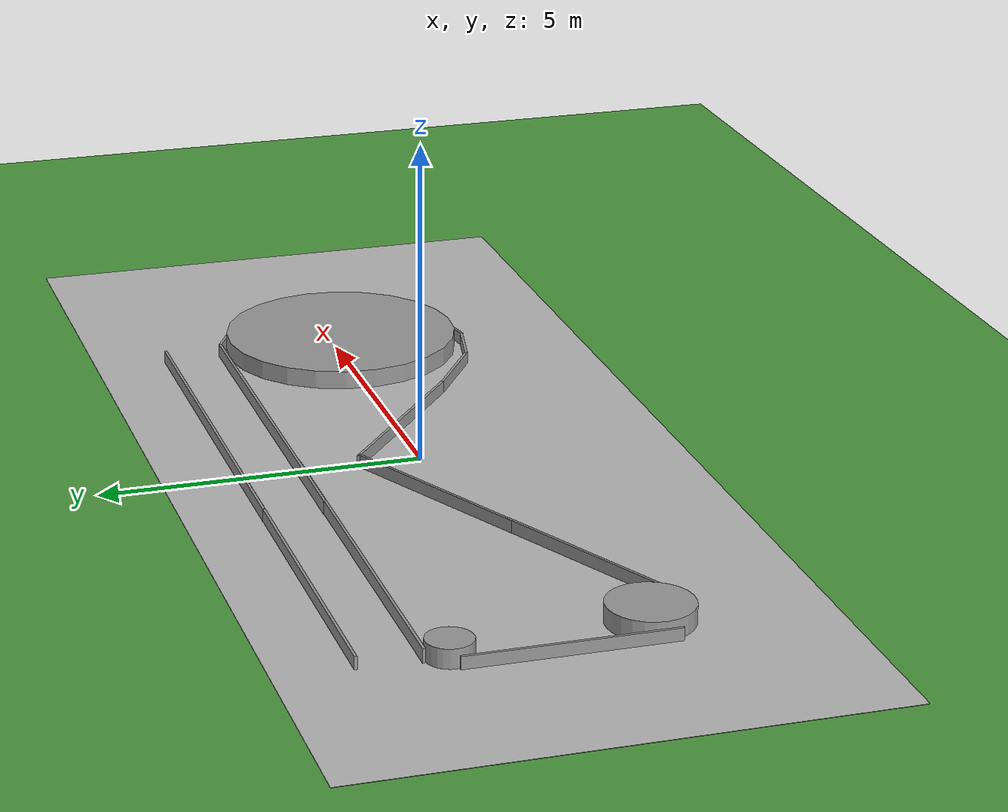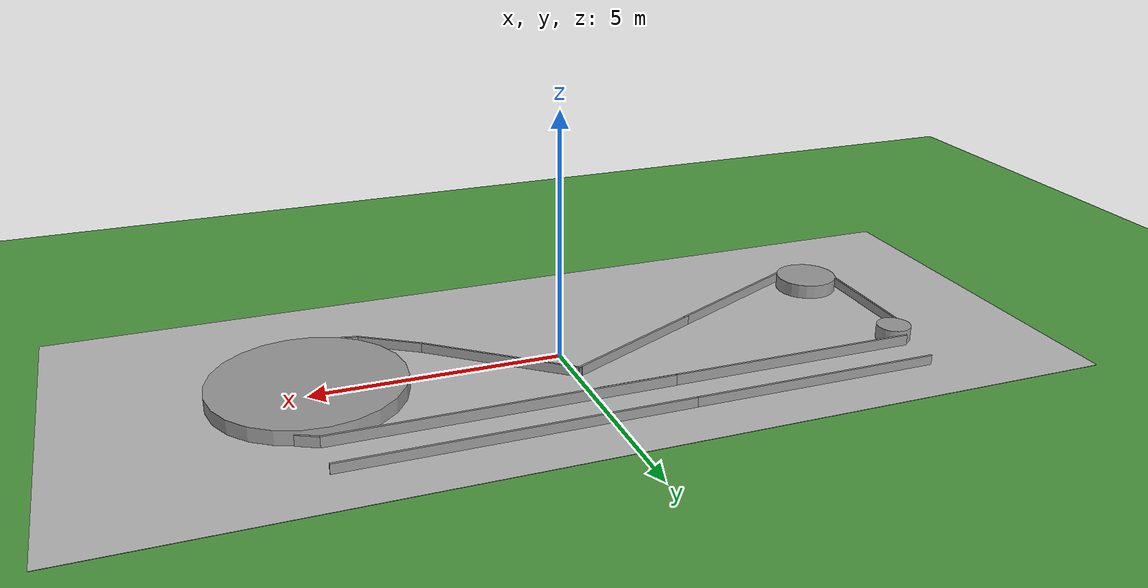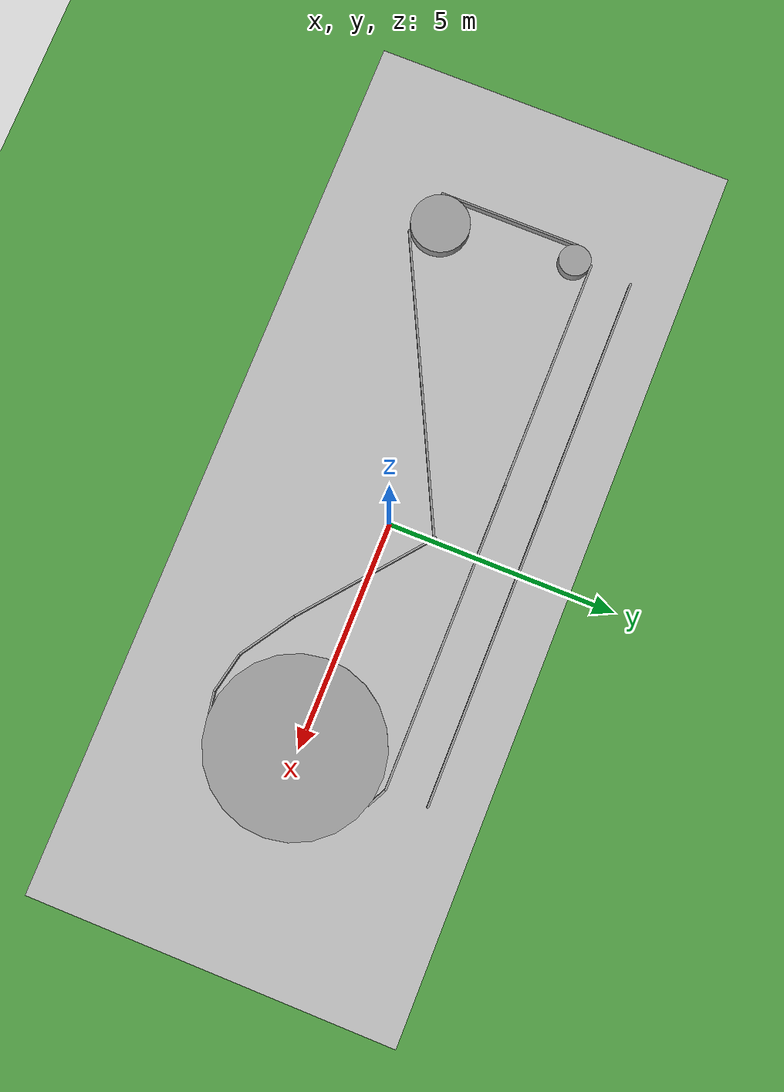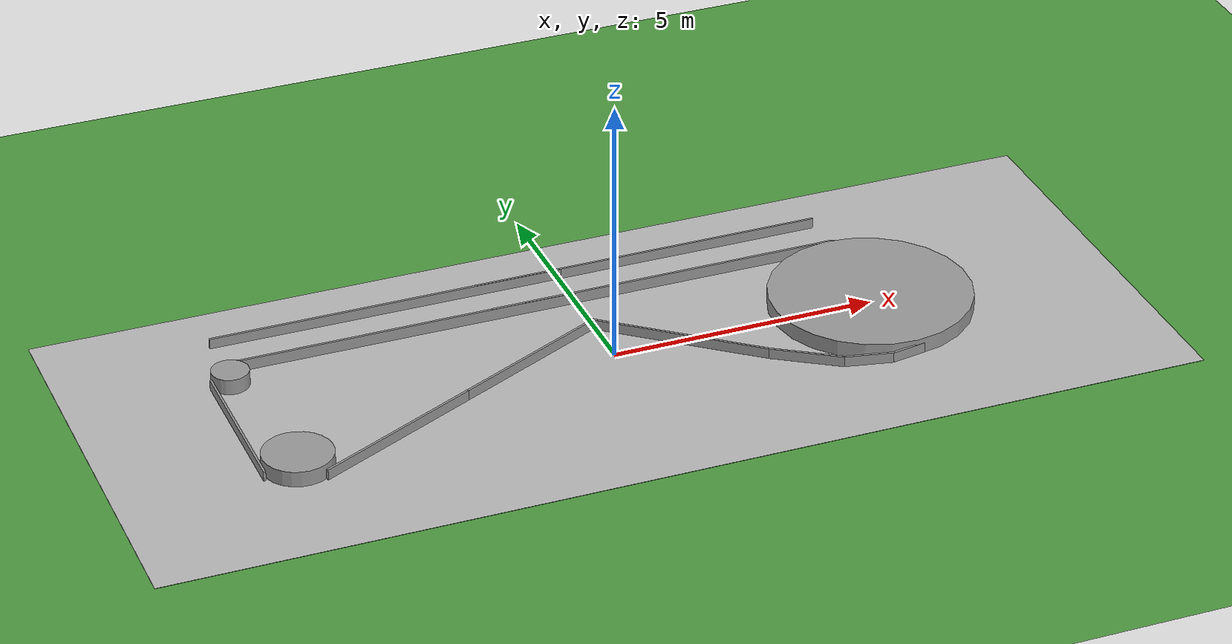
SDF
<sdf version="1.5">
 <world name="default">
  <light name="sun" type="directional">
   <cast_shadows>0</cast_shadows>
   <pose>0 0 10 0 -0 0</pose>
   <diffuse>0.8 0.8 0.8 1</diffuse>
   <specular>0.2 0.2 0.2 1</specular>
   <attenuation>
    <range>1000</range>
    <constant>0.9</constant>
    <linear>0.01</linear>
    <quadratic>0.001</quadratic>
   </attenuation>
   <direction>-0.5 0.1 -0.9</direction>
  </light>
  <scene>
   <sky><clouds><speed>1</speed></clouds></sky>
   <ambient>0.4 0.4 0.4 1</ambient>
   <background>0.7 0.7 0.7 1</background>
   <shadows>1</shadows>
  </scene>
  <physics name="default_physics" default="0" type="ode">
   <real_time_update_rate>1000</real_time_update_rate>
   <ode>
    <solver>
     <type>quick</type>
     <iters>70</iters>
     <sor>1.3</sor>
     <use_dynamic_moi_rescaling>0</use_dynamic_moi_rescaling>
    </solver>
    <constraints>
     <cfm>0</cfm>
     <erp>0.2</erp>
     <contact_max_correcting_vel>100</contact_max_correcting_vel>
     <contact_surface_layer>0.001</contact_surface_layer>
    </constraints>
   </ode>
   <max_step_size>0.001</max_step_size>
   <real_time_factor>1</real_time_factor>
  </physics>
  <scene><ambient>0.4 0.4 0.4 1</ambient><background>0.7 0.7 0.7 1</background><shadows>1</shadows></scene>
  <spherical_coordinates>
   <surface_model>EARTH_WGS84</surface_model>
   <latitude_deg>0</latitude_deg>
   <longitude_deg>0</longitude_deg>
   <elevation>0</elevation>
   <heading_deg>0</heading_deg>
  </spherical_coordinates>
  <model name="ground_grass">
   <static>1</static>
   <link name="ground_grass">
    <collision name="collision">
     <geometry><plane><normal>0 0 1</normal><size>50 50</size></plane></geometry>
     <surface><friction><ode><mu>100</mu><mu2>50</mu2></ode></friction></surface>
    </collision>
    <visual name="visual_ground">
     <cast_shadows>0</cast_shadows>
     <pose>0 0 0.005 0 -0 0</pose>
     <geometry><plane><normal>0 0 1</normal><size>50 50</size></plane></geometry>
     <material>
      <script>
       <uri>model://ground_grass/materials/scripts</uri>
       <uri>model://ground_grass/materials/textures</uri>
       <name>Floor/Grass</name>
      </script>
     </material>
    </visual>
    <velocity_decay><linear>0</linear><angular>0</angular></velocity_decay>
   </link>
  </model>
  <model name="ucsd_track_v1">
   <static>1</static>
   <link name="link_track">
    <collision name="collision">
     <geometry><plane><normal>0 0 1</normal><size>19.431 8.0264</size></plane></geometry>
     <surface><friction><ode><mu>100</mu><mu2>50</mu2></ode></friction></surface>
    </collision>
    <visual name="visual_ground">
     <cast_shadows>0</cast_shadows>
     <pose>0 0 0.005 0 -0 0</pose>
     <geometry><plane><normal>0 0 1</normal><size>19.431 8.0264</size></plane></geometry>
     <material>
      <script>
       <uri>model://ucsd_track_v1/materials/scripts</uri>
       <uri>model://ucsd_track_v1/materials/textures</uri>
       <name>Floor/Image</name>
      </script>
     </material>
    </visual>
    <velocity_decay><linear>0</linear><angular>0</angular></velocity_decay>
   </link>
   <pose>0 0 0.001 0 -0 0</pose>
  </model>
  <gravity>0 0 -9.8</gravity>
  <magnetic_field>6e-06 2.3e-05 -4.2e-05</magnetic_field>
  <atmosphere type="adiabatic"/>
  <model name="grey_wall_track">
   <link name="link">
    <pose>0 0 1.4 0 -0 0</pose>
    <inertial>
     <inertia><ixx>nan</ixx><ixy>0</ixy><ixz>0</ixz><iyy>nan</iyy><iyz>0</iyz><izz>nan</izz></inertia>
     <mass>0</mass>
    </inertial>
    <visual name="visual">
     <cast_shadows>0</cast_shadows>
     <geometry><box><size>6.7262 0.043266 0.226147</size></box></geometry>
     <material>
      <script>
       <uri>model://grey_wall/materials/scripts</uri>
       <uri>model://grey_wall/materials/textures</uri>
       <name>vrc/grey_wall</name>
      </script>
      <ambient>1 1 1 1</ambient>
      <diffuse>1 1 1 1</diffuse>
      <specular>0 0 0 1</specular>
      <emissive>0 0 0 1</emissive>
     </material>
    </visual>
    <collision name="collision">
     <geometry><box><size>6.7262 0.043266 0.226147</size></box></geometry>
     <surface>
      <friction>
       <ode><mu>1</mu><mu2>1</mu2><fdir1>0 0 0</fdir1><slip1>0</slip1><slip2>0</slip2></ode>
       <torsional>
        <coefficient>1</coefficient>
        <patch_radius>0</patch_radius>
        <surface_radius>0</surface_radius>
        <use_patch_radius>1</use_patch_radius>
        <ode><slip>0</slip></ode>
       </torsional>
      </friction>
      <bounce><restitution_coefficient>0</restitution_coefficient><threshold>1e+06</threshold></bounce>
      <contact>
       <collide_without_contact>0</collide_without_contact>
       <collide_without_contact_bitmask>1</collide_without_contact_bitmask>
       <collide_bitmask>1</collide_bitmask>
       <ode>
        <soft_cfm>0</soft_cfm>
        <soft_erp>0.2</soft_erp>
        <kp>1e+13</kp>
        <kd>1</kd>
        <max_vel>0.01</max_vel>
        <min_depth>0</min_depth>
       </ode>
       <bullet>
        <split_impulse>1</split_impulse>
        <split_impulse_penetration_threshold>-0.01</split_impulse_penetration_threshold>
        <soft_cfm>0</soft_cfm>
        <soft_erp>0.2</soft_erp>
        <kp>1e+13</kp>
        <kd>1</kd>
       </bullet>
      </contact>
     </surface>
    </collision>
   </link>
   <static>1</static>
   <pose>-3.38545 1.93605 -1.28591 0 -0 0</pose>
  </model>
  <model name="grey_wall_track_1">
   <link name="link">
    <pose>0 0 1.4 0 -0 0</pose>
    <inertial>
     <inertia><ixx>nan</ixx><ixy>0</ixy><ixz>0</ixz><iyy>nan</iyy><iyz>0</iyz><izz>nan</izz></inertia>
     <mass>0</mass>
    </inertial>
    <visual name="visual">
     <cast_shadows>0</cast_shadows>
     <geometry><box><size>6.7262 0.043266 0.226147</size></box></geometry>
     <material>
      <script>
       <uri>model://grey_wall/materials/scripts</uri>
       <uri>model://grey_wall/materials/textures</uri>
       <name>vrc/grey_wall</name>
      </script>
      <ambient>1 1 1 1</ambient>
      <diffuse>1 1 1 1</diffuse>
      <specular>0 0 0 1</specular>
      <emissive>0 0 0 1</emissive>
     </material>
    </visual>
    <collision name="collision">
     <geometry><box><size>6.7262 0.043266 0.226147</size></box></geometry>
     <surface>
      <friction>
       <ode><mu>1</mu><mu2>1</mu2><fdir1>0 0 0</fdir1><slip1>0</slip1><slip2>0</slip2></ode>
       <torsional>
        <coefficient>1</coefficient>
        <patch_radius>0</patch_radius>
        <surface_radius>0</surface_radius>
        <use_patch_radius>1</use_patch_radius>
        <ode><slip>0</slip></ode>
       </torsional>
      </friction>
      <bounce><restitution_coefficient>0</restitution_coefficient><threshold>1e+06</threshold></bounce>
      <contact>
       <collide_without_contact>0</collide_without_contact>
       <collide_without_contact_bitmask>1</collide_without_contact_bitmask>
       <collide_bitmask>1</collide_bitmask>
       <ode>
        <soft_cfm>0</soft_cfm>
        <soft_erp>0.2</soft_erp>
        <kp>1e+13</kp>
        <kd>1</kd>
        <max_vel>0.01</max_vel>
        <min_depth>0</min_depth>
       </ode>
       <bullet>
        <split_impulse>1</split_impulse>
        <split_impulse_penetration_threshold>-0.01</split_impulse_penetration_threshold>
        <soft_cfm>0</soft_cfm>
        <soft_erp>0.2</soft_erp>
        <kp>1e+13</kp>
        <kd>1</kd>
       </bullet>
      </contact>
     </surface>
    </collision>
   </link>
   <static>1</static>
   <pose>1.7337 1.94342 -1.28559 0 -0 0</pose>
  </model>
  <model name="grey_wall_track_2">
   <link name="link">
    <pose>0 0 1.4 0 -0 0</pose>
    <inertial>
     <inertia><ixx>nan</ixx><ixy>0</ixy><ixz>0</ixz><iyy>nan</iyy><iyz>0</iyz><izz>nan</izz></inertia>
     <mass>0</mass>
    </inertial>
    <visual name="visual">
     <cast_shadows>0</cast_shadows>
     <geometry><box><size>6.7262 0.043266 0.226147</size></box></geometry>
     <material>
      <script>
       <uri>model://grey_wall/materials/scripts</uri>
       <uri>model://grey_wall/materials/textures</uri>
       <name>vrc/grey_wall</name>
      </script>
      <ambient>1 1 1 1</ambient>
      <diffuse>1 1 1 1</diffuse>
      <specular>0 0 0 1</specular>
      <emissive>0 0 0 1</emissive>
     </material>
    </visual>
    <collision name="collision">
     <geometry><box><size>6.7262 0.043266 0.226147</size></box></geometry>
     <surface>
      <friction>
       <ode><mu>1</mu><mu2>1</mu2><fdir1>0 0 0</fdir1><slip1>0</slip1><slip2>0</slip2></ode>
       <torsional>
        <coefficient>1</coefficient>
        <patch_radius>0</patch_radius>
        <surface_radius>0</surface_radius>
        <use_patch_radius>1</use_patch_radius>
        <ode><slip>0</slip></ode>
       </torsional>
      </friction>
      <bounce><restitution_coefficient>0</restitution_coefficient><threshold>1e+06</threshold></bounce>
      <contact>
       <collide_without_contact>0</collide_without_contact>
       <collide_without_contact_bitmask>1</collide_without_contact_bitmask>
       <collide_bitmask>1</collide_bitmask>
       <ode>
        <soft_cfm>0</soft_cfm>
        <soft_erp>0.2</soft_erp>
        <kp>1e+13</kp>
        <kd>1</kd>
        <max_vel>0.01</max_vel>
        <min_depth>0</min_depth>
       </ode>
       <bullet>
        <split_impulse>1</split_impulse>
        <split_impulse_penetration_threshold>-0.01</split_impulse_penetration_threshold>
        <soft_cfm>0</soft_cfm>
        <soft_erp>0.2</soft_erp>
        <kp>1e+13</kp>
        <kd>1</kd>
       </bullet>
      </contact>
     </surface>
    </collision>
   </link>
   <static>1</static>
   <pose>1.73864 2.86141 -1.30508 0 -0 0</pose>
  </model>
  <model name="grey_wall_track_3">
   <link name="link">
    <pose>0 0 1.4 0 -0 0</pose>
    <inertial>
     <inertia><ixx>nan</ixx><ixy>0</ixy><ixz>0</ixz><iyy>nan</iyy><iyz>0</iyz><izz>nan</izz></inertia>
     <mass>0</mass>
    </inertial>
    <visual name="visual">
     <cast_shadows>0</cast_shadows>
     <geometry><box><size>6.7262 0.043266 0.226147</size></box></geometry>
     <material>
      <script>
       <uri>model://grey_wall/materials/scripts</uri>
       <uri>model://grey_wall/materials/textures</uri>
       <name>vrc/grey_wall</name>
      </script>
      <ambient>1 1 1 1</ambient>
      <diffuse>1 1 1 1</diffuse>
      <specular>0 0 0 1</specular>
      <emissive>0 0 0 1</emissive>
     </material>
    </visual>
    <collision name="collision">
     <geometry><box><size>6.7262 0.043266 0.226147</size></box></geometry>
     <surface>
      <friction>
       <ode><mu>1</mu><mu2>1</mu2><fdir1>0 0 0</fdir1><slip1>0</slip1><slip2>0</slip2></ode>
       <torsional>
        <coefficient>1</coefficient>
        <patch_radius>0</patch_radius>
        <surface_radius>0</surface_radius>
        <use_patch_radius>1</use_patch_radius>
        <ode><slip>0</slip></ode>
       </torsional>
      </friction>
      <bounce><restitution_coefficient>0</restitution_coefficient><threshold>1e+06</threshold></bounce>
      <contact>
       <collide_without_contact>0</collide_without_contact>
       <collide_without_contact_bitmask>1</collide_without_contact_bitmask>
       <collide_bitmask>1</collide_bitmask>
       <ode>
        <soft_cfm>0</soft_cfm>
        <soft_erp>0.2</soft_erp>
        <kp>1e+13</kp>
        <kd>1</kd>
        <max_vel>0.01</max_vel>
        <min_depth>0</min_depth>
       </ode>
       <bullet>
        <split_impulse>1</split_impulse>
        <split_impulse_penetration_threshold>-0.01</split_impulse_penetration_threshold>
        <soft_cfm>0</soft_cfm>
        <soft_erp>0.2</soft_erp>
        <kp>1e+13</kp>
        <kd>1</kd>
       </bullet>
      </contact>
     </surface>
    </collision>
   </link>
   <static>1</static>
   <pose>-3.31818 2.85803 -1.30759 0 -0 0</pose>
  </model>
  <model name="grey_wall_small_6">
   <link name="link">
    <pose>0 0 1.4 0 -0 0.009516</pose>
    <inertial>
     <inertia><ixx>nan</ixx><ixy>0</ixy><ixz>0</ixz><iyy>nan</iyy><iyz>0</iyz><izz>nan</izz></inertia>
     <mass>0</mass>
    </inertial>
    <visual name="visual">
     <cast_shadows>0</cast_shadows>
     <geometry><box><size>3.14897 0.043266 0.226147</size></box></geometry>
     <material>
      <script>
       <uri>model://grey_wall/materials/scripts</uri>
       <uri>model://grey_wall/materials/textures</uri>
       <name>vrc/grey_wall</name>
      </script>
      <ambient>1 1 1 1</ambient>
      <diffuse>1 1 1 1</diffuse>
      <specular>0 0 0 1</specular>
      <emissive>0 0 0 1</emissive>
     </material>
    </visual>
    <collision name="collision">
     <geometry><box><size>3.14897 0.043266 0.226147</size></box></geometry>
     <surface>
      <friction>
       <ode><mu>1</mu><mu2>1</mu2><fdir1>0 0 0</fdir1><slip1>0</slip1><slip2>0</slip2></ode>
       <torsional>
        <coefficient>1</coefficient>
        <patch_radius>0</patch_radius>
        <surface_radius>0</surface_radius>
        <use_patch_radius>1</use_patch_radius>
        <ode><slip>0</slip></ode>
       </torsional>
      </friction>
      <bounce><restitution_coefficient>0</restitution_coefficient><threshold>1e+06</threshold></bounce>
      <contact>
       <collide_without_contact>0</collide_without_contact>
       <collide_without_contact_bitmask>1</collide_without_contact_bitmask>
       <collide_bitmask>1</collide_bitmask>
       <ode>
        <soft_cfm>0</soft_cfm>
        <soft_erp>0.2</soft_erp>
        <kp>1e+13</kp>
        <kd>1</kd>
        <max_vel>0.01</max_vel>
        <min_depth>0</min_depth>
       </ode>
       <bullet>
        <split_impulse>1</split_impulse>
        <split_impulse_penetration_threshold>-0.01</split_impulse_penetration_threshold>
        <soft_cfm>0</soft_cfm>
        <soft_erp>0.2</soft_erp>
        <kp>1e+13</kp>
        <kd>1</kd>
       </bullet>
      </contact>
     </surface>
    </collision>
   </link>
   <static>1</static>
   <pose>-7.05702 -0.045658 -1.30963 0 -0 1.55954</pose>
  </model>
  <model name="grey_wall_twisted_4">
   <link name="link">
    <pose>0 0 1.4 0 -0 0.455224</pose>
    <inertial>
     <inertia><ixx>nan</ixx><ixy>0</ixy><ixz>0</ixz><iyy>nan</iyy><iyz>0</iyz><izz>nan</izz></inertia>
     <mass>0</mass>
    </inertial>
    <visual name="visual">
     <cast_shadows>0</cast_shadows>
     <geometry><box><size>3.35542 0.043266 0.226147</size></box></geometry>
     <material>
      <script>
       <uri>model://grey_wall/materials/scripts</uri>
       <uri>model://grey_wall/materials/textures</uri>
       <name>vrc/grey_wall</name>
      </script>
      <ambient>1 1 1 1</ambient>
      <diffuse>1 1 1 1</diffuse>
      <specular>0 0 0 1</specular>
      <emissive>0 0 0 1</emissive>
     </material>
    </visual>
    <collision name="collision">
     <geometry><box><size>3.35542 0.043266 0.226147</size></box></geometry>
     <surface>
      <friction>
       <ode><mu>1</mu><mu2>1</mu2><fdir1>0 0 0</fdir1><slip1>0</slip1><slip2>0</slip2></ode>
       <torsional>
        <coefficient>1</coefficient>
        <patch_radius>0</patch_radius>
        <surface_radius>0</surface_radius>
        <use_patch_radius>1</use_patch_radius>
        <ode><slip>0</slip></ode>
       </torsional>
      </friction>
      <bounce><restitution_coefficient>0</restitution_coefficient><threshold>1e+06</threshold></bounce>
      <contact>
       <collide_without_contact>0</collide_without_contact>
       <collide_without_contact_bitmask>1</collide_without_contact_bitmask>
       <collide_bitmask>1</collide_bitmask>
       <ode>
        <soft_cfm>0</soft_cfm>
        <soft_erp>0.2</soft_erp>
        <kp>1e+13</kp>
        <kd>1</kd>
        <max_vel>0.01</max_vel>
        <min_depth>0</min_depth>
       </ode>
       <bullet>
        <split_impulse>1</split_impulse>
        <split_impulse_penetration_threshold>-0.01</split_impulse_penetration_threshold>
        <soft_cfm>0</soft_cfm>
        <soft_erp>0.2</soft_erp>
        <kp>1e+13</kp>
        <kd>1</kd>
       </bullet>
      </contact>
     </surface>
    </collision>
   </link>
   <static>1</static>
   <pose>-1.52613 0.248203 -1.30539 0 -0 0</pose>
  </model>
  <model name="grey_wall_twisted_r_1">
   <link name="link">
    <pose>0 0 1.4 0 0 -0.682</pose>
    <inertial>
     <inertia><ixx>nan</ixx><ixy>0</ixy><ixz>0</ixz><iyy>nan</iyy><iyz>0</iyz><izz>nan</izz></inertia>
     <mass>0</mass>
    </inertial>
    <visual name="visual">
     <cast_shadows>0</cast_shadows>
     <geometry><box><size>3.35542 0.043266 0.226147</size></box></geometry>
     <material>
      <script>
       <uri>model://grey_wall/materials/scripts</uri>
       <uri>model://grey_wall/materials/textures</uri>
       <name>vrc/grey_wall</name>
      </script>
      <ambient>1 1 1 1</ambient>
      <diffuse>1 1 1 1</diffuse>
      <specular>0 0 0 1</specular>
      <emissive>0 0 0 1</emissive>
     </material>
    </visual>
    <collision name="collision">
     <geometry><box><size>3.35542 0.043266 0.226147</size></box></geometry>
     <surface>
      <friction>
       <ode><mu>1</mu><mu2>1</mu2><fdir1>0 0 0</fdir1><slip1>0</slip1><slip2>0</slip2></ode>
       <torsional>
        <coefficient>1</coefficient>
        <patch_radius>0</patch_radius>
        <surface_radius>0</surface_radius>
        <use_patch_radius>1</use_patch_radius>
        <ode><slip>0</slip></ode>
       </torsional>
      </friction>
      <bounce><restitution_coefficient>0</restitution_coefficient><threshold>1e+06</threshold></bounce>
      <contact>
       <collide_without_contact>0</collide_without_contact>
       <collide_without_contact_bitmask>1</collide_without_contact_bitmask>
       <collide_bitmask>1</collide_bitmask>
       <ode>
        <soft_cfm>0</soft_cfm>
        <soft_erp>0.2</soft_erp>
        <kp>1e+13</kp>
        <kd>1</kd>
        <max_vel>0.01</max_vel>
        <min_depth>0</min_depth>
       </ode>
       <bullet>
        <split_impulse>1</split_impulse>
        <split_impulse_penetration_threshold>-0.01</split_impulse_penetration_threshold>
        <soft_cfm>0</soft_cfm>
        <soft_erp>0.2</soft_erp>
        <kp>1e+13</kp>
        <kd>1</kd>
       </bullet>
      </contact>
     </surface>
    </collision>
   </link>
   <static>1</static>
   <pose>1.2215 -0.049414 -1.30552 0 -0 0</pose>
  </model>
  <model name="grey_wall_twisted_s_2">
   <link name="link">
    <pose>0 0 1.4 0 0 -0.580025</pose>
    <inertial>
     <inertia><ixx>nan</ixx><ixy>0</ixy><ixz>0</ixz><iyy>nan</iyy><iyz>0</iyz><izz>nan</izz></inertia>
     <mass>0</mass>
    </inertial>
    <visual name="visual">
     <cast_shadows>0</cast_shadows>
     <geometry><box><size>1.36861 0.043266 0.226147</size></box></geometry>
     <material>
      <script>
       <uri>model://grey_wall/materials/scripts</uri>
       <uri>model://grey_wall/materials/textures</uri>
       <name>vrc/grey_wall</name>
      </script>
      <ambient>1 1 1 1</ambient>
      <diffuse>1 1 1 1</diffuse>
      <specular>0 0 0 1</specular>
      <emissive>0 0 0 1</emissive>
     </material>
    </visual>
    <collision name="collision">
     <geometry><box><size>1.36861 0.043266 0.226147</size></box></geometry>
     <surface>
      <friction>
       <ode><mu>1</mu><mu2>1</mu2><fdir1>0 0 0</fdir1><slip1>0</slip1><slip2>0</slip2></ode>
       <torsional>
        <coefficient>1</coefficient>
        <patch_radius>0</patch_radius>
        <surface_radius>0</surface_radius>
        <use_patch_radius>1</use_patch_radius>
        <ode><slip>0</slip></ode>
       </torsional>
      </friction>
      <bounce><restitution_coefficient>0</restitution_coefficient><threshold>1e+06</threshold></bounce>
      <contact>
       <collide_without_contact>0</collide_without_contact>
       <collide_without_contact_bitmask>1</collide_without_contact_bitmask>
       <collide_bitmask>1</collide_bitmask>
       <ode>
        <soft_cfm>0</soft_cfm>
        <soft_erp>0.2</soft_erp>
        <kp>1e+13</kp>
        <kd>1</kd>
        <max_vel>0.01</max_vel>
        <min_depth>0</min_depth>
       </ode>
       <bullet>
        <split_impulse>1</split_impulse>
        <split_impulse_penetration_threshold>-0.01</split_impulse_penetration_threshold>
        <soft_cfm>0</soft_cfm>
        <soft_erp>0.2</soft_erp>
        <kp>1e+13</kp>
        <kd>1</kd>
       </bullet>
      </contact>
     </surface>
    </collision>
   </link>
   <static>1</static>
   <pose>3.08955 -1.47755 -1.30469 0 -0 0</pose>
  </model>
  <model name="grey_wall_twisted_z_4">
   <link name="link">
    <pose>0 0 1.4 0 0 -0.211768</pose>
    <inertial>
     <inertia><ixx>nan</ixx><ixy>0</ixy><ixz>0</ixz><iyy>nan</iyy><iyz>0</iyz><izz>nan</izz></inertia>
     <mass>0</mass>
    </inertial>
    <visual name="visual">
     <cast_shadows>0</cast_shadows>
     <geometry><box><size>0.9086 0.043266 0.226147</size></box></geometry>
     <material>
      <script>
       <uri>model://grey_wall/materials/scripts</uri>
       <uri>model://grey_wall/materials/textures</uri>
       <name>vrc/grey_wall</name>
      </script>
      <ambient>1 1 1 1</ambient>
      <diffuse>1 1 1 1</diffuse>
      <specular>0 0 0 1</specular>
      <emissive>0 0 0 1</emissive>
     </material>
    </visual>
    <collision name="collision">
     <geometry><box><size>0.9086 0.043266 0.226147</size></box></geometry>
     <surface>
      <friction>
       <ode><mu>1</mu><mu2>1</mu2><fdir1>0 0 0</fdir1><slip1>0</slip1><slip2>0</slip2></ode>
       <torsional>
        <coefficient>1</coefficient>
        <patch_radius>0</patch_radius>
        <surface_radius>0</surface_radius>
        <use_patch_radius>1</use_patch_radius>
        <ode><slip>0</slip></ode>
       </torsional>
      </friction>
      <bounce><restitution_coefficient>0</restitution_coefficient><threshold>1e+06</threshold></bounce>
      <contact>
       <collide_without_contact>0</collide_without_contact>
       <collide_without_contact_bitmask>1</collide_without_contact_bitmask>
       <collide_bitmask>1</collide_bitmask>
       <ode>
        <soft_cfm>0</soft_cfm>
        <soft_erp>0.2</soft_erp>
        <kp>1e+13</kp>
        <kd>1</kd>
        <max_vel>0.01</max_vel>
        <min_depth>0</min_depth>
       </ode>
       <bullet>
        <split_impulse>1</split_impulse>
        <split_impulse_penetration_threshold>-0.01</split_impulse_penetration_threshold>
        <soft_cfm>0</soft_cfm>
        <soft_erp>0.2</soft_erp>
        <kp>1e+13</kp>
        <kd>1</kd>
       </bullet>
      </contact>
     </surface>
    </collision>
   </link>
   <static>1</static>
   <pose>4.09788 -1.94353 -1.30469 0 -0 0</pose>
  </model>
  <model name="grey_wall_twisted_3_0">
   <link name="link">
    <pose>0 0 1.4 0 -0 0.455224</pose>
    <inertial>
     <inertia><ixx>nan</ixx><ixy>0</ixy><ixz>0</ixz><iyy>nan</iyy><iyz>0</iyz><izz>nan</izz></inertia>
     <mass>0</mass>
    </inertial>
    <visual name="visual">
     <cast_shadows>0</cast_shadows>
     <geometry><box><size>3.45281 0.043266 0.226147</size></box></geometry>
     <material>
      <script>
       <uri>model://grey_wall/materials/scripts</uri>
       <uri>model://grey_wall/materials/textures</uri>
       <name>vrc/grey_wall</name>
      </script>
      <ambient>1 1 1 1</ambient>
      <diffuse>1 1 1 1</diffuse>
      <specular>0 0 0 1</specular>
      <emissive>0 0 0 1</emissive>
     </material>
    </visual>
    <collision name="collision">
     <geometry><box><size>3.45281 0.043266 0.226147</size></box></geometry>
     <surface>
      <friction>
       <ode><mu>1</mu><mu2>1</mu2><fdir1>0 0 0</fdir1><slip1>0</slip1><slip2>0</slip2></ode>
       <torsional>
        <coefficient>1</coefficient>
        <patch_radius>0</patch_radius>
        <surface_radius>0</surface_radius>
        <use_patch_radius>1</use_patch_radius>
        <ode><slip>0</slip></ode>
       </torsional>
      </friction>
      <bounce><restitution_coefficient>0</restitution_coefficient><threshold>1e+06</threshold></bounce>
      <contact>
       <collide_without_contact>0</collide_without_contact>
       <collide_without_contact_bitmask>1</collide_without_contact_bitmask>
       <collide_bitmask>1</collide_bitmask>
       <ode>
        <soft_cfm>0</soft_cfm>
        <soft_erp>0.2</soft_erp>
        <kp>1e+13</kp>
        <kd>1</kd>
        <max_vel>0.01</max_vel>
        <min_depth>0</min_depth>
       </ode>
       <bullet>
        <split_impulse>1</split_impulse>
        <split_impulse_penetration_threshold>-0.01</split_impulse_penetration_threshold>
        <soft_cfm>0</soft_cfm>
        <soft_erp>0.2</soft_erp>
        <kp>1e+13</kp>
        <kd>1</kd>
       </bullet>
      </contact>
     </surface>
    </collision>
   </link>
   <static>1</static>
   <pose>-4.49945 -1.20909 -1.30331 0 -0 0</pose>
  </model>
  <model name="unit_cylinder2_1">
   <link name="link">
    <inertial>
     <mass>0.30371</mass>
     <inertia>
      <ixx>0.0213162</ixx>
      <ixy>0</ixy>
      <ixz>0</ixz>
      <iyy>0.0213162</iyy>
      <iyz>0</iyz>
      <izz>0.0379638</izz>
     </inertia>
    </inertial>
    <visual name="visual">
     <geometry><cylinder><radius>0.348419</radius><length>0.303709</length></cylinder></geometry>
     <material>
      <script><name>Gazebo/Grey</name><uri>file://media/materials/scripts/gazebo.material</uri></script>
      <ambient>0.3 0.3 0.3 1</ambient>
      <diffuse>0.7 0.7 0.7 1</diffuse>
      <specular>0.01 0.01 0.01 1</specular>
      <emissive>0 0 0 1</emissive>
     </material>
    </visual>
    <collision name="collision">
     <geometry><cylinder><radius>0.348419</radius><length>0.303709</length></cylinder></geometry>
     <surface>
      <friction>
       <ode><mu>1</mu><mu2>1</mu2><fdir1>0 0 0</fdir1><slip1>0</slip1><slip2>0</slip2></ode>
       <torsional>
        <coefficient>1</coefficient>
        <patch_radius>0</patch_radius>
        <surface_radius>0</surface_radius>
        <use_patch_radius>1</use_patch_radius>
        <ode><slip>0</slip></ode>
       </torsional>
      </friction>
      <bounce><restitution_coefficient>0</restitution_coefficient><threshold>1e+06</threshold></bounce>
      <contact>
       <collide_without_contact>0</collide_without_contact>
       <collide_without_contact_bitmask>1</collide_without_contact_bitmask>
       <collide_bitmask>1</collide_bitmask>
       <ode>
        <soft_cfm>0</soft_cfm>
        <soft_erp>0.2</soft_erp>
        <kp>1e+13</kp>
        <kd>1</kd>
        <max_vel>0.01</max_vel>
        <min_depth>0</min_depth>
       </ode>
       <bullet>
        <split_impulse>1</split_impulse>
        <split_impulse_penetration_threshold>-0.01</split_impulse_penetration_threshold>
        <soft_cfm>0</soft_cfm>
        <soft_erp>0.2</soft_erp>
        <kp>1e+13</kp>
        <kd>1</kd>
       </bullet>
      </contact>
     </surface>
    </collision>
   </link>
   <static>0</static>
   <pose>-6.68593 1.56597 0.152845 0 -0 0.015083</pose>
  </model>
  <model name="unit_cylinder1">
   <link name="link">
    <inertial>
     <mass>0.30371</mass>
     <inertia>
      <ixx>0.0213162</ixx>
      <ixy>0</ixy>
      <ixz>0</ixz>
      <iyy>0.0213162</iyy>
      <iyz>0</iyz>
      <izz>0.0379638</izz>
     </inertia>
    </inertial>
    <visual name="visual">
     <geometry><cylinder><radius>0.645346</radius><length>0.303709</length></cylinder></geometry>
     <material>
      <script><name>Gazebo/Grey</name><uri>file://media/materials/scripts/gazebo.material</uri></script>
      <ambient>0.3 0.3 0.3 1</ambient>
      <diffuse>0.7 0.7 0.7 1</diffuse>
      <specular>0.01 0.01 0.01 1</specular>
      <emissive>0 0 0 1</emissive>
     </material>
    </visual>
    <collision name="collision">
     <geometry><cylinder><radius>0.645346</radius><length>0.303709</length></cylinder></geometry>
     <surface>
      <friction>
       <ode><mu>1</mu><mu2>1</mu2><fdir1>0 0 0</fdir1><slip1>0</slip1><slip2>0</slip2></ode>
       <torsional>
        <coefficient>1</coefficient>
        <patch_radius>0</patch_radius>
        <surface_radius>0</surface_radius>
        <use_patch_radius>1</use_patch_radius>
        <ode><slip>0</slip></ode>
       </torsional>
      </friction>
      <bounce><restitution_coefficient>0</restitution_coefficient><threshold>1e+06</threshold></bounce>
      <contact>
       <collide_without_contact>0</collide_without_contact>
       <collide_without_contact_bitmask>1</collide_without_contact_bitmask>
       <collide_bitmask>1</collide_bitmask>
       <ode>
        <soft_cfm>0</soft_cfm>
        <soft_erp>0.2</soft_erp>
        <kp>1e+13</kp>
        <kd>1</kd>
        <max_vel>0.01</max_vel>
        <min_depth>0</min_depth>
       </ode>
       <bullet>
        <split_impulse>1</split_impulse>
        <split_impulse_penetration_threshold>-0.01</split_impulse_penetration_threshold>
        <soft_cfm>0</soft_cfm>
        <soft_erp>0.2</soft_erp>
        <kp>1e+13</kp>
        <kd>1</kd>
       </bullet>
      </contact>
     </surface>
    </collision>
   </link>
   <static>0</static>
   <pose>-6.38487 -1.38439 0.152854 0 -0 0.049949</pose>
  </model>
  <model name="unit_cylinder3">
   <link name="link">
    <inertial>
     <mass>0.30371</mass>
     <inertia>
      <ixx>0.0213162</ixx>
      <ixy>0</ixy>
      <ixz>0</ixz>
      <iyy>0.0213162</iyy>
      <iyz>0</iyz>
      <izz>0.0379638</izz>
     </inertia>
    </inertial>
    <visual name="visual">
     <geometry><cylinder><radius>1.89087</radius><length>0.303709</length></cylinder></geometry>
     <material>
      <script><name>Gazebo/Grey</name><uri>file://media/materials/scripts/gazebo.material</uri></script>
      <ambient>0.3 0.3 0.3 1</ambient>
      <diffuse>0.7 0.7 0.7 1</diffuse>
      <specular>0.01 0.01 0.01 1</specular>
      <emissive>0 0 0 1</emissive>
     </material>
    </visual>
    <collision name="collision">
     <geometry><cylinder><radius>1.89087</radius><length>0.303709</length></cylinder></geometry>
     <surface>
      <friction>
       <ode><mu>1</mu><mu2>1</mu2><fdir1>0 0 0</fdir1><slip1>0</slip1><slip2>0</slip2></ode>
       <torsional>
        <coefficient>1</coefficient>
        <patch_radius>0</patch_radius>
        <surface_radius>0</surface_radius>
        <use_patch_radius>1</use_patch_radius>
        <ode><slip>0</slip></ode>
       </torsional>
      </friction>
      <bounce><restitution_coefficient>0</restitution_coefficient><threshold>1e+06</threshold></bounce>
      <contact>
       <collide_without_contact>0</collide_without_contact>
       <collide_without_contact_bitmask>1</collide_without_contact_bitmask>
       <collide_bitmask>1</collide_bitmask>
       <ode>
        <soft_cfm>0</soft_cfm>
        <soft_erp>0.2</soft_erp>
        <kp>1e+13</kp>
        <kd>1</kd>
        <max_vel>0.01</max_vel>
        <min_depth>0</min_depth>
       </ode>
       <bullet>
        <split_impulse>1</split_impulse>
        <split_impulse_penetration_threshold>-0.01</split_impulse_penetration_threshold>
        <soft_cfm>0</soft_cfm>
        <soft_erp>0.2</soft_erp>
        <kp>1e+13</kp>
        <kd>1</kd>
       </bullet>
      </contact>
     </surface>
    </collision>
   </link>
   <static>0</static>
   <pose>4.96528 -0.073822 0.152855 0 -0 0.049949</pose>
  </model>
  <model name="grey_wall_twisted_b_3">
   <link name="link">
    <pose>0 0 1.4 0 -0 0.168525</pose>
    <inertial>
     <inertia><ixx>nan</ixx><ixy>0</ixy><ixz>0</ixz><iyy>nan</iyy><iyz>0</iyz><izz>nan</izz></inertia>
     <mass>0</mass>
    </inertial>
    <visual name="visual">
     <cast_shadows>0</cast_shadows>
     <geometry><box><size>0.67315 0.043266 0.226147</size></box></geometry>
     <material>
      <script>
       <uri>model://grey_wall/materials/scripts</uri>
       <uri>model://grey_wall/materials/textures</uri>
       <name>vrc/grey_wall</name>
      </script>
      <ambient>1 1 1 1</ambient>
      <diffuse>1 1 1 1</diffuse>
      <specular>0 0 0 1</specular>
      <emissive>0 0 0 1</emissive>
     </material>
    </visual>
    <collision name="collision">
     <geometry><box><size>0.67315 0.043266 0.226147</size></box></geometry>
     <surface>
      <friction>
       <ode><mu>1</mu><mu2>1</mu2><fdir1>0 0 0</fdir1><slip1>0</slip1><slip2>0</slip2></ode>
       <torsional>
        <coefficient>1</coefficient>
        <patch_radius>0</patch_radius>
        <surface_radius>0</surface_radius>
        <use_patch_radius>1</use_patch_radius>
        <ode><slip>0</slip></ode>
       </torsional>
      </friction>
      <bounce><restitution_coefficient>0</restitution_coefficient><threshold>1e+06</threshold></bounce>
      <contact>
       <collide_without_contact>0</collide_without_contact>
       <collide_without_contact_bitmask>1</collide_without_contact_bitmask>
       <collide_bitmask>1</collide_bitmask>
       <ode>
        <soft_cfm>0</soft_cfm>
        <soft_erp>0.2</soft_erp>
        <kp>1e+13</kp>
        <kd>1</kd>
        <max_vel>0.01</max_vel>
        <min_depth>0</min_depth>
       </ode>
       <bullet>
        <split_impulse>1</split_impulse>
        <split_impulse_penetration_threshold>-0.01</split_impulse_penetration_threshold>
        <soft_cfm>0</soft_cfm>
        <soft_erp>0.2</soft_erp>
        <kp>1e+13</kp>
        <kd>1</kd>
       </bullet>
      </contact>
     </surface>
    </collision>
   </link>
   <static>1</static>
   <pose>4.8563 -1.98315 -1.30532 0 -0 0</pose>
  </model>
  <model name="grey_wall_twisted_c_0">
   <link name="link">
    <pose>0 0 1.4 0 0 -0.480065</pose>
    <inertial>
     <inertia><ixx>nan</ixx><ixy>0</ixy><ixz>0</ixz><iyy>nan</iyy><iyz>0</iyz><izz>nan</izz></inertia>
     <mass>0</mass>
    </inertial>
    <visual name="visual">
     <cast_shadows>0</cast_shadows>
     <geometry><box><size>0.469435 0.043266 0.261158</size></box></geometry>
     <material>
      <script>
       <uri>model://grey_wall/materials/scripts</uri>
       <uri>model://grey_wall/materials/textures</uri>
       <name>vrc/grey_wall</name>
      </script>
      <ambient>1 1 1 1</ambient>
      <diffuse>1 1 1 1</diffuse>
      <specular>0 0 0 1</specular>
      <emissive>0 0 0 1</emissive>
     </material>
    </visual>
    <collision name="collision">
     <geometry><box><size>0.469435 0.043266 0.261158</size></box></geometry>
     <surface>
      <friction>
       <ode><mu>1</mu><mu2>1</mu2><fdir1>0 0 0</fdir1><slip1>0</slip1><slip2>0</slip2></ode>
       <torsional>
        <coefficient>1</coefficient>
        <patch_radius>0</patch_radius>
        <surface_radius>0</surface_radius>
        <use_patch_radius>1</use_patch_radius>
        <ode><slip>0</slip></ode>
       </torsional>
      </friction>
      <bounce><restitution_coefficient>0</restitution_coefficient><threshold>1e+06</threshold></bounce>
      <contact>
       <collide_without_contact>0</collide_without_contact>
       <collide_without_contact_bitmask>1</collide_without_contact_bitmask>
       <collide_bitmask>1</collide_bitmask>
       <ode>
        <soft_cfm>0</soft_cfm>
        <soft_erp>0.2</soft_erp>
        <kp>1e+13</kp>
        <kd>1</kd>
        <max_vel>0.01</max_vel>
        <min_depth>0</min_depth>
       </ode>
       <bullet>
        <split_impulse>1</split_impulse>
        <split_impulse_penetration_threshold>-0.01</split_impulse_penetration_threshold>
        <soft_cfm>0</soft_cfm>
        <soft_erp>0.2</soft_erp>
        <kp>1e+13</kp>
        <kd>1</kd>
       </bullet>
      </contact>
     </surface>
    </collision>
   </link>
   <static>1</static>
   <pose>5.2931 1.83753 -1.30532 0 -0 0</pose>
  </model>
 </world>
</sdf>
